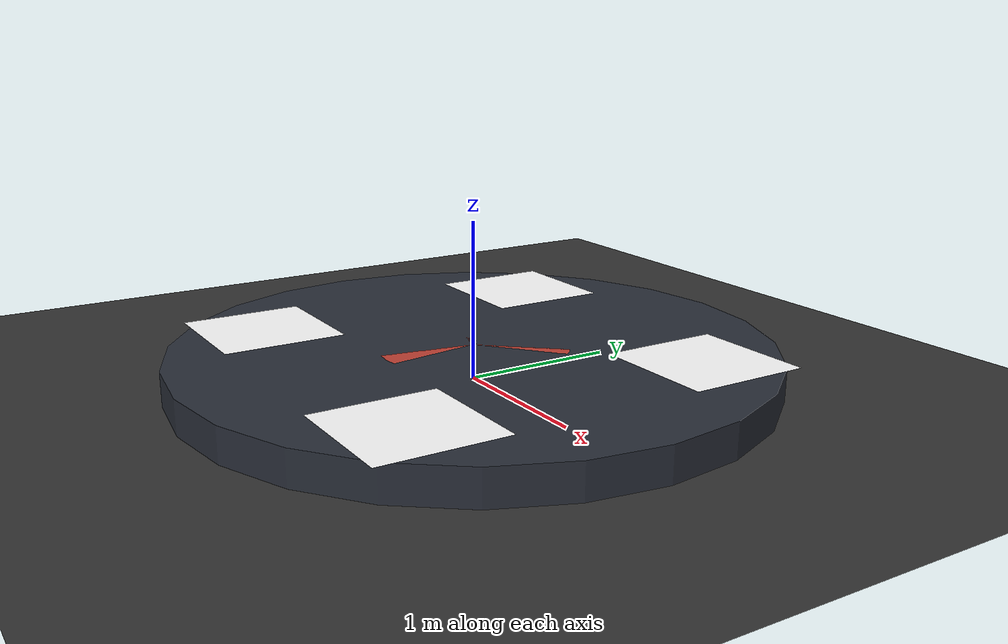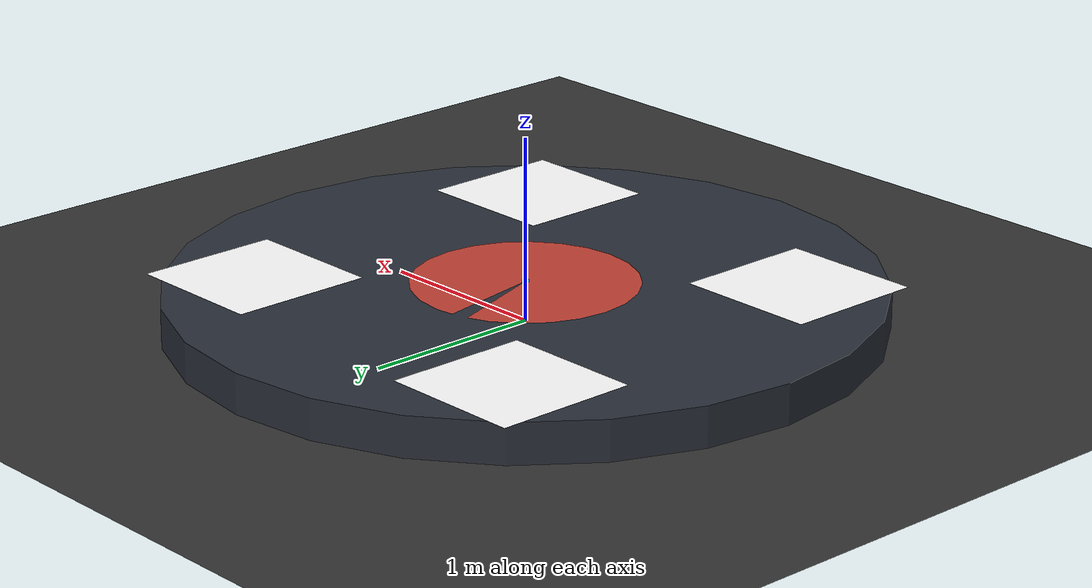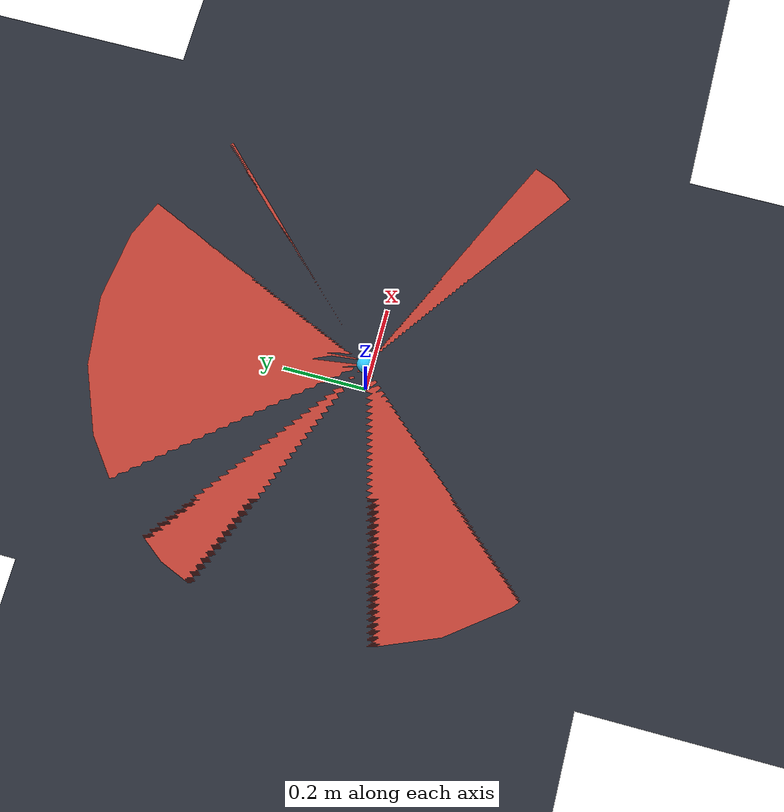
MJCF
<mujoco model="blocks_from_file">
  <option timestep="0.002" gravity="0 0 -9.81"/>
  <default>
    <geom friction="0.600000 0.005 0.0001" solimp="0.9 0.95 0.001" solref="0.01 1"/>
  </default>
  <visual> <global offwidth="3840" offheight="1440"/>  <quality shadowsize="0"/> </visual>
  <asset>
    <mesh name="tag_plate_0p8" file="tag_plate_0p8.obj"/>
    <texture name="tex_296" type="2d" file="textures/textures/tag36_11_00296.png"/>
    <material name="mat_296" texture="tex_296" rgba="1 1 1 1" specular="0" shininess="0" texrepeat="1 1" texuniform="true"/>
    <texture name="tex_297" type="2d" file="textures/textures/tag36_11_00297.png"/>
    <material name="mat_297" texture="tex_297" rgba="1 1 1 1" specular="0" shininess="0" texrepeat="1 1" texuniform="true"/>
    <texture name="tex_298" type="2d" file="textures/textures/tag36_11_00298.png"/>
    <material name="mat_298" texture="tex_298" rgba="1 1 1 1" specular="0" shininess="0" texrepeat="1 1" texuniform="true"/>
    <texture name="tex_299" type="2d" file="textures/textures/tag36_11_00299.png"/>
    <material name="mat_299" texture="tex_299" rgba="1 1 1 1" specular="0" shininess="0" texrepeat="1 1" texuniform="true"/>
  </asset>
  <worldbody>
    <camera name="cam0" pos="6.0 0.0 4.0" quat="0.6189979158661568 0.3418209767602837 0.3418209767602837 0.6189979158661567" fovy="90.0"/>
    <camera name="cam1" pos="-6.0 0.0 4.0" quat="0.6189979158661568 0.3418209767602837 -0.3418209767602837 -0.6189979158661567" fovy="90.0"/>
    <camera name="cam2" pos="0.0 6.0 4.0" quat="-0.0 0.0 0.48340786123801177 0.8753952476985989" fovy="90.0"/>
    <camera name="cam3" pos="0.0 -6.0 4.0" quat="0.8753952476985989 0.48340786123801177 -0.0 -0.0" fovy="90.0"/>
    <light name="light_xy_pos" pos=" 6  0  10" dir="-1 -0 -1" directional="false" diffuse="0.5 0.5 0.5"/>
    <light name="light_xy_neg" pos="-6 -0  10" dir=" 1  0 -1" directional="false" diffuse="0.5 0.5 0.5"/>
    <light name="light_xny_pos" pos=" 0 -6  10" dir="-0  1 -1" directional="false" diffuse="0.4 0.4 0.4"/>
    <light name="light_xny_neg" pos="-0  6  10" dir=" 0 -1 -1" directional="false" diffuse="0.4 0.4 0.4"/>
    <geom name="floor" type="plane" size="8 8 0.1" rgba="0.2 0.2 0.2 1" friction="0.600000 0.005 0.0001"/>
    <body name="turntable" pos="0 0 0.110000">
      <geom name="turntable_geom" type="cylinder" size="1.900000 0.110000" rgba="0.16 0.18 0.22 1" mass="12.000000" friction="0.600000 0.005 0.0001"/>
      <geom name="turntable_top_marker" type="cylinder" size="0.608000 0.002500" pos="0 0 0.107500" rgba="0.75 0.25 0.2 1" contype="0" conaffinity="0"/>
      <site name="turntable_top_center" pos="0 0 0.110000" size="0.02" rgba="0.2 0.8 1 1"/>
      <geom name="tt_296" type="mesh" mesh="tag_plate_0p8" material="mat_296" pos="-1.000000 -1.000000 0.114000" quat="1 0 0 0" contype="0" conaffinity="0" rgba="1 1 1 1"/>
      <geom name="tt_297" type="mesh" mesh="tag_plate_0p8" material="mat_297" pos="1.000000 -1.000000 0.114000" quat="1 0 0 0" contype="0" conaffinity="0" rgba="1 1 1 1"/>
      <geom name="tt_298" type="mesh" mesh="tag_plate_0p8" material="mat_298" pos="1.000000 1.000000 0.114000" quat="1 0 0 0" contype="0" conaffinity="0" rgba="1 1 1 1"/>
      <geom name="tt_299" type="mesh" mesh="tag_plate_0p8" material="mat_299" pos="-1.000000 1.000000 0.114000" quat="1 0 0 0" contype="0" conaffinity="0" rgba="1 1 1 1"/>
    </body>
  </worldbody>
  <actuator>
  </actuator>
</mujoco>
